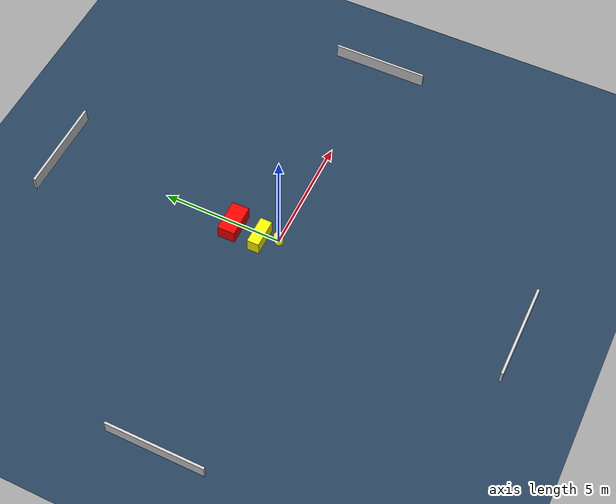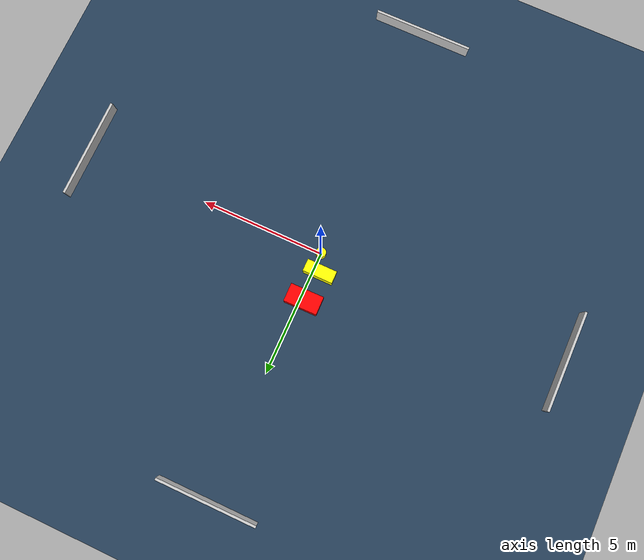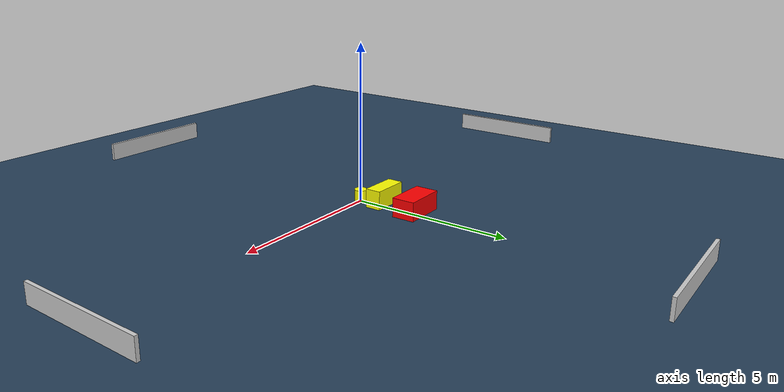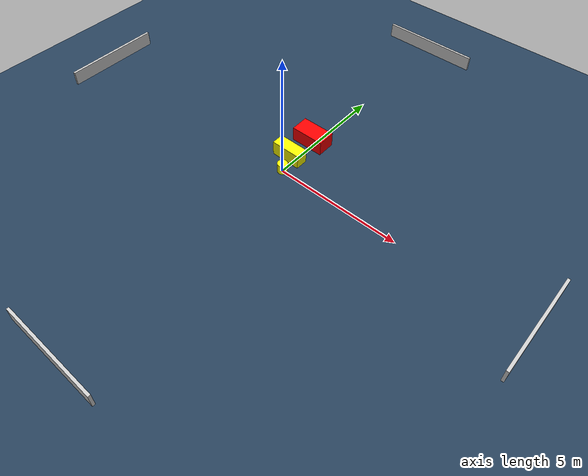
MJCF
<?xml version="1.0" ?>
<mujoco model="generated_environment">
  <option timestep="0.01" integrator="RK4" cone="elliptic"/>
  <default>
    <geom density="1"/>
  </default>
  <asset>
    <texture builtin="gradient" height="3072" name="skybox" rgb1="0.3 0.5 0.7" rgb2="0 0 0" type="skybox" width="512"/>
    <texture builtin="checker" height="300" name="groundplane" rgb1="0.2 0.3 0.4" rgb2="0.1 0.2 0.3" type="2d" width="300"/>
    <material name="groundplane" reflectance="0.2" texrepeat="5 5" texture="groundplane"/>
  </asset>
  <worldbody>
    <light dir="0 0 -1" directional="true" pos="0 0 1.5"/>
    <geom condim="3" friction="0.5 0.005 0.001" material="groundplane" name="floor" pos="0 0 0" size="0 0 0.05" type="plane"/>
    <body name="walls">
      <geom name="wall_1" condim="4" pos="-10.0 0.0 0.3" rgba="0.800000011920929 0.800000011920929 0.800000011920929 1.0" size="0.05 2.0 0.3" type="box"/>
      <geom name="wall_2" condim="4" pos="10.0 0.0 0.3" rgba="0.800000011920929 0.800000011920929 0.800000011920929 1.0" size="0.05 2.0 0.3" type="box"/>
      <geom name="wall_3" condim="4" pos="0.0 -10.0 0.3" rgba="0.800000011920929 0.800000011920929 0.800000011920929 1.0" size="2.0 0.05 0.3" type="box"/>
      <geom name="wall_4" condim="4" pos="0.0 10.0 0.3" rgba="0.800000011920929 0.800000011920929 0.800000011920929 1.0" size="2.0 0.05 0.3" type="box"/>
    </body>
    <body name="robot">
      <joint name="joint_x" type="slide" pos="0 0 0" axis="1 0 0"/>
      <joint name="joint_y" type="slide" pos="0 0 0" axis="0 1 0"/>
      <geom name="robot" type="cylinder" pos="0.0 0.0 0.2" size="0.2 0.2 0.0" mass="5.0" friction="1.0 0.005 0.0001" condim="4" rgba="1.0 1.0 0.0 1.0"/>
    </body>
    <body name="obstacle_1_movable">
      <geom name="obstacle_1_movable" condim="4" pos="-0.27053211341189365 0.7054488051920111 0.3" euler="0 0 89.86401322148578" friction="0.0 0.005 0.001" rgba="1.0 1.0 0.0 1.0" size="0.24674715819828946 0.601293332962666 0.3" type="box" mass="0.1"/>
      <joint type="free"/>
    </body>
    <body name="obstacle_2_static">
      <geom name="obstacle_2_static" condim="4" pos="-0.15342943452402363 1.9209302768599437 0.3" euler="0 0 90.63697934298511" friction="0.0 0.005 0.001" rgba="1.0 0.0 0.0 1.0" size="0.3635824384571462 0.6673067474111878 0.3" type="box"/>
    </body>
  </worldbody>
  <actuator>
    <motor name="actuator_x" joint="joint_x" gear="1" ctrlrange="-1 1"/>
    <motor name="actuator_y" joint="joint_y" gear="1" ctrlrange="-1 1"/>
  </actuator>
</mujoco>
